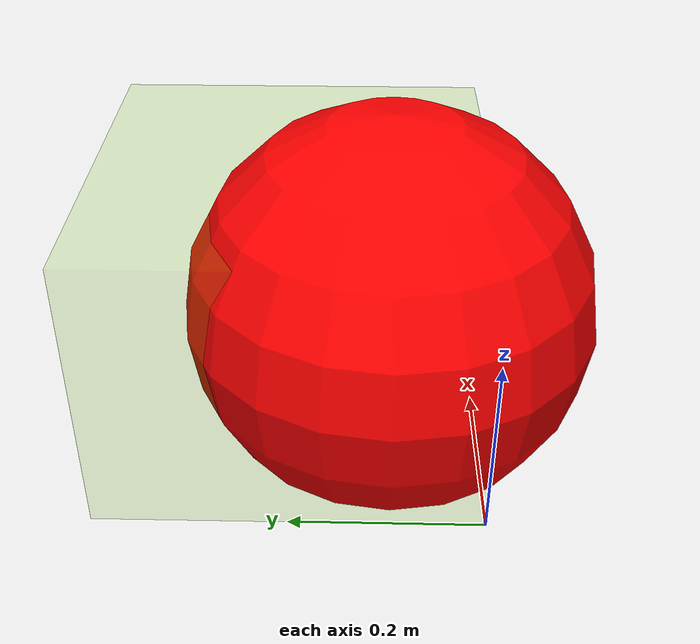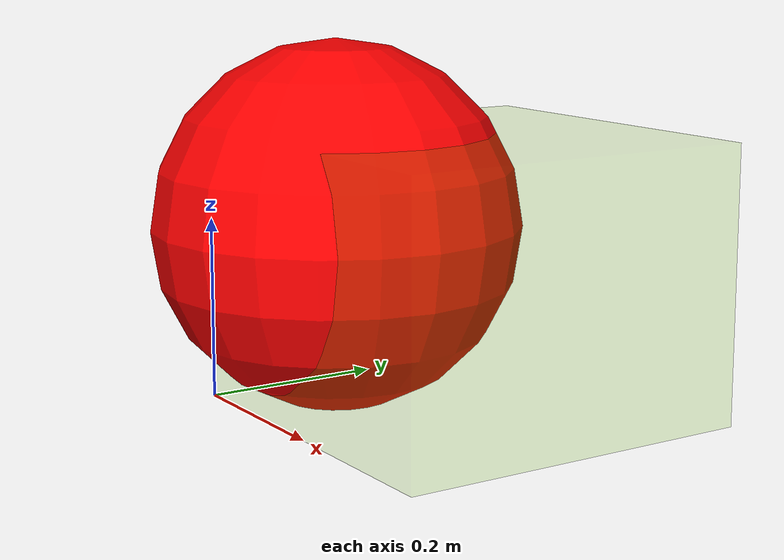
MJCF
<?xml version="1.0" encoding="utf-8"?>
<mujoco>
	<option timestep="0.005"/>
	<worldbody>
		<body name="simpleagent" pos="0.1 0.1 0.15">
			<joint axis="1 0 0" name="tx" pos="0 0 0" type="slide"></joint>
			<joint axis="0 1 0" name="ty" pos="0 0 0" type="slide"></joint>
            <geom name="agent" mass="1" pos="0 0 0.05" rgba="1 0 0 1" type="sphere" size="0.2"></geom>
		</body>
        <body name="annotation:outer_bound" pos="0.2 0.2 0.15">
			<geom conaffinity="0" contype="0" mass="0" pos="0 0 0" rgba="0.417 0.7203 0.0001 0.1" size="0.2 0.2 0.15" type="box"></geom>
		</body>
	</worldbody>
	<actuator>
		<motor name="motortx" ctrllimited="true" ctrlrange="-250 250" forcelimited="true" forcerange="-250 250" joint="tx"></motor>
		<motor name="motorty" ctrllimited="true" ctrlrange="-250 250" forcelimited="true" forcerange="-250 250" joint="ty"></motor>
	</actuator>
</mujoco>
